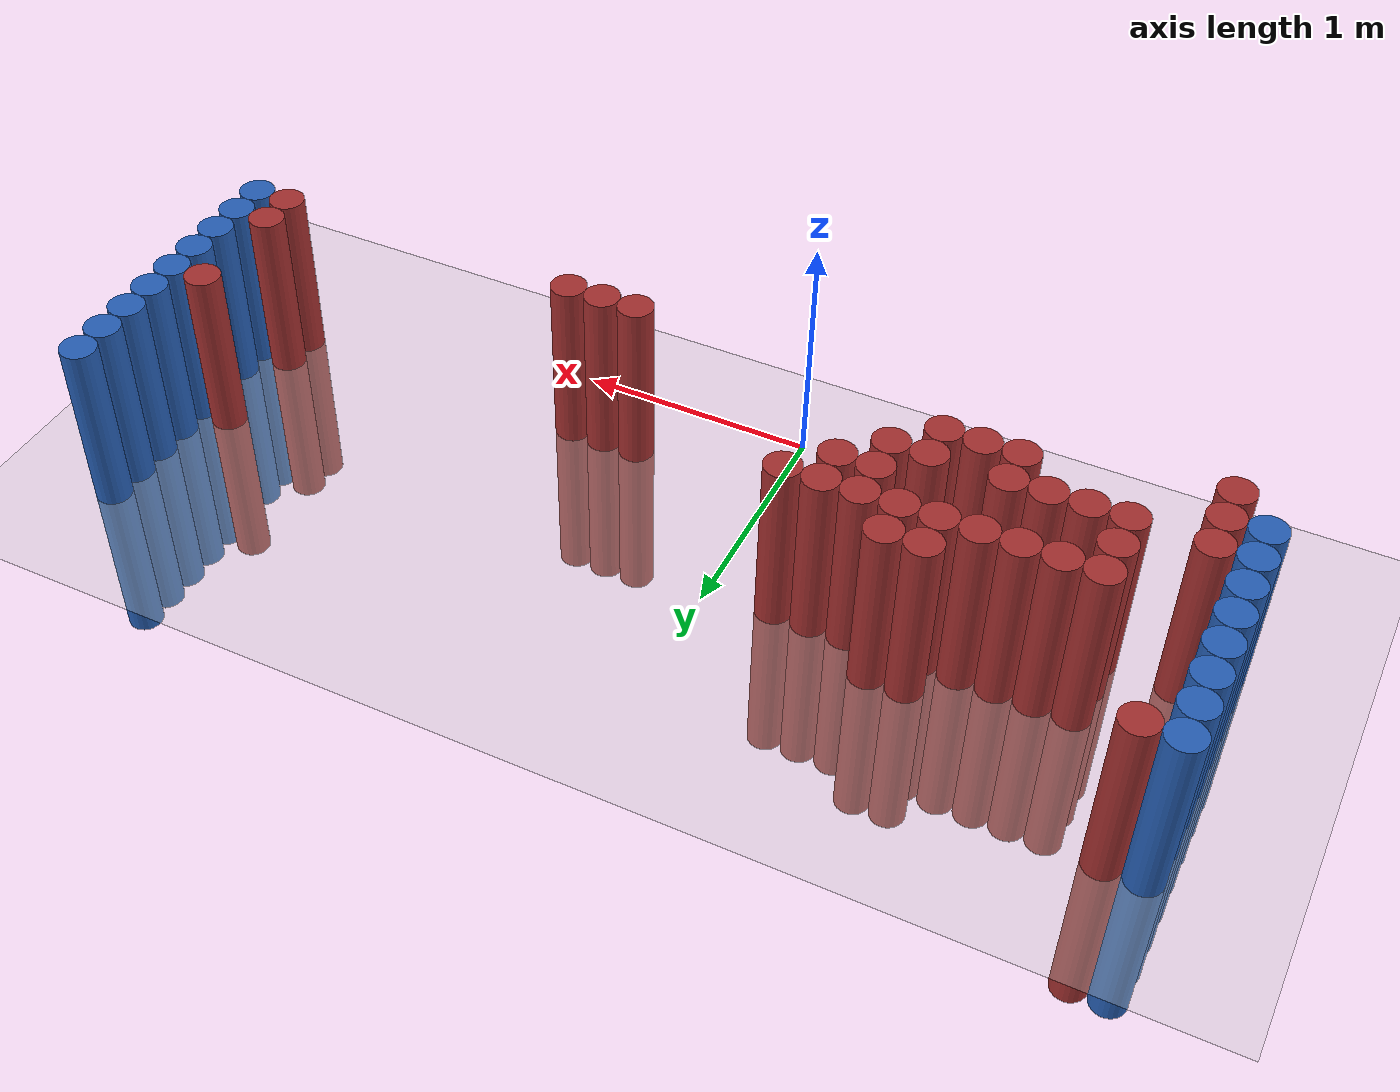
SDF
<sdf version="1.6">
 <world name="default">
  <model name="ground_plane">
   <static>1</static>
   <link name="link">
    <collision name="collision">
     <geometry><plane><normal>0 0 1</normal><size>100 100</size></plane></geometry>
     <surface><friction><ode><mu>100</mu><mu2>50</mu2></ode></friction></surface>
    </collision>
    <visual name="visual">
     <cast_shadows>0</cast_shadows>
     <geometry><plane><normal>0 0 1</normal><size>100 100</size></plane></geometry>
     <material>
      <script><uri>file://media/materials/scripts/gazebo.material</uri><name>Gazebo/Grey</name></script>
     </material>
    </visual>
   </link>
  </model>
  <model name="unit_cylinder_98">
   <static>1</static>
   <pose>-1.925000 0.475000 0.000000 0.000000 0.000000 0.000000</pose>
   <link name="link">
    <inertial>
     <mass>1</mass>
     <inertia><ixx>0.145833</ixx><ixy>0</ixy><ixz>0</ixz><iyy>0.145833</iyy><iyz>0</iyz><izz>0.125</izz></inertia>
    </inertial>
    <collision name="collision">
     <geometry><cylinder><radius>0.075000</radius><length>1.5</length></cylinder></geometry>
    </collision>
    <visual name="visual">
     <geometry><cylinder><radius>0.075000</radius><length>1.5</length></cylinder></geometry>
     <material>
      <ambient>0.152000 0.379000 0.720000 1</ambient>
      <diffuse>0.152000 0.379000 0.720000 1</diffuse>
     </material>
     <material>
      <script><name>Gazebo/Grey</name><uri>file://media/materials/scripts/gazebo.material</uri></script>
     </material>
    </visual>
   </link>
  </model>
  <model name="unit_cylinder_99">
   <static>1</static>
   <pose>-1.925000 0.625000 0.000000 0.000000 0.000000 0.000000</pose>
   <link name="link">
    <inertial>
     <mass>1</mass>
     <inertia><ixx>0.145833</ixx><ixy>0</ixy><ixz>0</ixz><iyy>0.145833</iyy><iyz>0</iyz><izz>0.125</izz></inertia>
    </inertial>
    <collision name="collision">
     <geometry><cylinder><radius>0.075000</radius><length>1.5</length></cylinder></geometry>
    </collision>
    <visual name="visual">
     <geometry><cylinder><radius>0.075000</radius><length>1.5</length></cylinder></geometry>
     <material>
      <ambient>0.152000 0.379000 0.720000 1</ambient>
      <diffuse>0.152000 0.379000 0.720000 1</diffuse>
     </material>
     <material>
      <script><name>Gazebo/Grey</name><uri>file://media/materials/scripts/gazebo.material</uri></script>
     </material>
    </visual>
   </link>
  </model>
  <model name="unit_cylinder_100">
   <static>1</static>
   <pose>-1.925000 0.775000 0.000000 0.000000 0.000000 0.000000</pose>
   <link name="link">
    <inertial>
     <mass>1</mass>
     <inertia><ixx>0.145833</ixx><ixy>0</ixy><ixz>0</ixz><iyy>0.145833</iyy><iyz>0</iyz><izz>0.125</izz></inertia>
    </inertial>
    <collision name="collision">
     <geometry><cylinder><radius>0.075000</radius><length>1.5</length></cylinder></geometry>
    </collision>
    <visual name="visual">
     <geometry><cylinder><radius>0.075000</radius><length>1.5</length></cylinder></geometry>
     <material>
      <ambient>0.152000 0.379000 0.720000 1</ambient>
      <diffuse>0.152000 0.379000 0.720000 1</diffuse>
     </material>
     <material>
      <script><name>Gazebo/Grey</name><uri>file://media/materials/scripts/gazebo.material</uri></script>
     </material>
    </visual>
   </link>
  </model>
  <model name="unit_cylinder_101">
   <static>1</static>
   <pose>-1.925000 0.925000 0.000000 0.000000 0.000000 0.000000</pose>
   <link name="link">
    <inertial>
     <mass>1</mass>
     <inertia><ixx>0.145833</ixx><ixy>0</ixy><ixz>0</ixz><iyy>0.145833</iyy><iyz>0</iyz><izz>0.125</izz></inertia>
    </inertial>
    <collision name="collision">
     <geometry><cylinder><radius>0.075000</radius><length>1.5</length></cylinder></geometry>
    </collision>
    <visual name="visual">
     <geometry><cylinder><radius>0.075000</radius><length>1.5</length></cylinder></geometry>
     <material>
      <ambient>0.152000 0.379000 0.720000 1</ambient>
      <diffuse>0.152000 0.379000 0.720000 1</diffuse>
     </material>
     <material>
      <script><name>Gazebo/Grey</name><uri>file://media/materials/scripts/gazebo.material</uri></script>
     </material>
    </visual>
   </link>
  </model>
  <model name="unit_cylinder_102">
   <static>1</static>
   <pose>-1.925000 1.075000 0.000000 0.000000 0.000000 0.000000</pose>
   <link name="link">
    <inertial>
     <mass>1</mass>
     <inertia><ixx>0.145833</ixx><ixy>0</ixy><ixz>0</ixz><iyy>0.145833</iyy><iyz>0</iyz><izz>0.125</izz></inertia>
    </inertial>
    <collision name="collision">
     <geometry><cylinder><radius>0.075000</radius><length>1.5</length></cylinder></geometry>
    </collision>
    <visual name="visual">
     <geometry><cylinder><radius>0.075000</radius><length>1.5</length></cylinder></geometry>
     <material>
      <ambient>0.152000 0.379000 0.720000 1</ambient>
      <diffuse>0.152000 0.379000 0.720000 1</diffuse>
     </material>
     <material>
      <script><name>Gazebo/Grey</name><uri>file://media/materials/scripts/gazebo.material</uri></script>
     </material>
    </visual>
   </link>
  </model>
  <model name="unit_cylinder_103">
   <static>1</static>
   <pose>-1.925000 1.225000 0.000000 0.000000 0.000000 0.000000</pose>
   <link name="link">
    <inertial>
     <mass>1</mass>
     <inertia><ixx>0.145833</ixx><ixy>0</ixy><ixz>0</ixz><iyy>0.145833</iyy><iyz>0</iyz><izz>0.125</izz></inertia>
    </inertial>
    <collision name="collision">
     <geometry><cylinder><radius>0.075000</radius><length>1.5</length></cylinder></geometry>
    </collision>
    <visual name="visual">
     <geometry><cylinder><radius>0.075000</radius><length>1.5</length></cylinder></geometry>
     <material>
      <ambient>0.152000 0.379000 0.720000 1</ambient>
      <diffuse>0.152000 0.379000 0.720000 1</diffuse>
     </material>
     <material>
      <script><name>Gazebo/Grey</name><uri>file://media/materials/scripts/gazebo.material</uri></script>
     </material>
    </visual>
   </link>
  </model>
  <model name="unit_cylinder_104">
   <static>1</static>
   <pose>-1.925000 1.375000 0.000000 0.000000 0.000000 0.000000</pose>
   <link name="link">
    <inertial>
     <mass>1</mass>
     <inertia><ixx>0.145833</ixx><ixy>0</ixy><ixz>0</ixz><iyy>0.145833</iyy><iyz>0</iyz><izz>0.125</izz></inertia>
    </inertial>
    <collision name="collision">
     <geometry><cylinder><radius>0.075000</radius><length>1.5</length></cylinder></geometry>
    </collision>
    <visual name="visual">
     <geometry><cylinder><radius>0.075000</radius><length>1.5</length></cylinder></geometry>
     <material>
      <ambient>0.152000 0.379000 0.720000 1</ambient>
      <diffuse>0.152000 0.379000 0.720000 1</diffuse>
     </material>
     <material>
      <script><name>Gazebo/Grey</name><uri>file://media/materials/scripts/gazebo.material</uri></script>
     </material>
    </visual>
   </link>
  </model>
  <model name="unit_cylinder_105">
   <static>1</static>
   <pose>-1.925000 1.525000 0.000000 0.000000 0.000000 0.000000</pose>
   <link name="link">
    <inertial>
     <mass>1</mass>
     <inertia><ixx>0.145833</ixx><ixy>0</ixy><ixz>0</ixz><iyy>0.145833</iyy><iyz>0</iyz><izz>0.125</izz></inertia>
    </inertial>
    <collision name="collision">
     <geometry><cylinder><radius>0.075000</radius><length>1.5</length></cylinder></geometry>
    </collision>
    <visual name="visual">
     <geometry><cylinder><radius>0.075000</radius><length>1.5</length></cylinder></geometry>
     <material>
      <ambient>0.152000 0.379000 0.720000 1</ambient>
      <diffuse>0.152000 0.379000 0.720000 1</diffuse>
     </material>
     <material>
      <script><name>Gazebo/Grey</name><uri>file://media/materials/scripts/gazebo.material</uri></script>
     </material>
    </visual>
   </link>
  </model>
  <model name="unit_cylinder_126">
   <static>1</static>
   <pose>-1.775000 0.325000 0.000000 0.000000 0.000000 0.000000</pose>
   <link name="link">
    <inertial>
     <mass>1</mass>
     <inertia><ixx>0.145833</ixx><ixy>0</ixy><ixz>0</ixz><iyy>0.145833</iyy><iyz>0</iyz><izz>0.125</izz></inertia>
    </inertial>
    <collision name="collision">
     <geometry><cylinder><radius>0.075000</radius><length>1.5</length></cylinder></geometry>
    </collision>
    <visual name="visual">
     <geometry><cylinder><radius>0.075000</radius><length>1.5</length></cylinder></geometry>
     <material>
      <ambient>0.648000 0.192000 0.192000 1</ambient>
      <diffuse>0.648000 0.192000 0.192000 1</diffuse>
     </material>
     <material>
      <script><name>Gazebo/Grey</name><uri>file://media/materials/scripts/gazebo.material</uri></script>
     </material>
    </visual>
   </link>
  </model>
  <model name="unit_cylinder_127">
   <static>1</static>
   <pose>-1.775000 0.475000 0.000000 0.000000 0.000000 0.000000</pose>
   <link name="link">
    <inertial>
     <mass>1</mass>
     <inertia><ixx>0.145833</ixx><ixy>0</ixy><ixz>0</ixz><iyy>0.145833</iyy><iyz>0</iyz><izz>0.125</izz></inertia>
    </inertial>
    <collision name="collision">
     <geometry><cylinder><radius>0.075000</radius><length>1.5</length></cylinder></geometry>
    </collision>
    <visual name="visual">
     <geometry><cylinder><radius>0.075000</radius><length>1.5</length></cylinder></geometry>
     <material>
      <ambient>0.648000 0.192000 0.192000 1</ambient>
      <diffuse>0.648000 0.192000 0.192000 1</diffuse>
     </material>
     <material>
      <script><name>Gazebo/Grey</name><uri>file://media/materials/scripts/gazebo.material</uri></script>
     </material>
    </visual>
   </link>
  </model>
  <model name="unit_cylinder_128">
   <static>1</static>
   <pose>-1.775000 0.625000 0.000000 0.000000 0.000000 0.000000</pose>
   <link name="link">
    <inertial>
     <mass>1</mass>
     <inertia><ixx>0.145833</ixx><ixy>0</ixy><ixz>0</ixz><iyy>0.145833</iyy><iyz>0</iyz><izz>0.125</izz></inertia>
    </inertial>
    <collision name="collision">
     <geometry><cylinder><radius>0.075000</radius><length>1.5</length></cylinder></geometry>
    </collision>
    <visual name="visual">
     <geometry><cylinder><radius>0.075000</radius><length>1.5</length></cylinder></geometry>
     <material>
      <ambient>0.648000 0.192000 0.192000 1</ambient>
      <diffuse>0.648000 0.192000 0.192000 1</diffuse>
     </material>
     <material>
      <script><name>Gazebo/Grey</name><uri>file://media/materials/scripts/gazebo.material</uri></script>
     </material>
    </visual>
   </link>
  </model>
  <model name="unit_cylinder_129">
   <static>1</static>
   <pose>-1.775000 1.525000 0.000000 0.000000 0.000000 0.000000</pose>
   <link name="link">
    <inertial>
     <mass>1</mass>
     <inertia><ixx>0.145833</ixx><ixy>0</ixy><ixz>0</ixz><iyy>0.145833</iyy><iyz>0</iyz><izz>0.125</izz></inertia>
    </inertial>
    <collision name="collision">
     <geometry><cylinder><radius>0.075000</radius><length>1.5</length></cylinder></geometry>
    </collision>
    <visual name="visual">
     <geometry><cylinder><radius>0.075000</radius><length>1.5</length></cylinder></geometry>
     <material>
      <ambient>0.648000 0.192000 0.192000 1</ambient>
      <diffuse>0.648000 0.192000 0.192000 1</diffuse>
     </material>
     <material>
      <script><name>Gazebo/Grey</name><uri>file://media/materials/scripts/gazebo.material</uri></script>
     </material>
    </visual>
   </link>
  </model>
  <model name="unit_cylinder_149">
   <static>1</static>
   <pose>-1.475000 0.625000 0.000000 0.000000 0.000000 0.000000</pose>
   <link name="link">
    <inertial>
     <mass>1</mass>
     <inertia><ixx>0.145833</ixx><ixy>0</ixy><ixz>0</ixz><iyy>0.145833</iyy><iyz>0</iyz><izz>0.125</izz></inertia>
    </inertial>
    <collision name="collision">
     <geometry><cylinder><radius>0.075000</radius><length>1.5</length></cylinder></geometry>
    </collision>
    <visual name="visual">
     <geometry><cylinder><radius>0.075000</radius><length>1.5</length></cylinder></geometry>
     <material>
      <ambient>0.648000 0.192000 0.192000 1</ambient>
      <diffuse>0.648000 0.192000 0.192000 1</diffuse>
     </material>
     <material>
      <script><name>Gazebo/Grey</name><uri>file://media/materials/scripts/gazebo.material</uri></script>
     </material>
    </visual>
   </link>
  </model>
  <model name="unit_cylinder_150">
   <static>1</static>
   <pose>-1.475000 0.775000 0.000000 0.000000 0.000000 0.000000</pose>
   <link name="link">
    <inertial>
     <mass>1</mass>
     <inertia><ixx>0.145833</ixx><ixy>0</ixy><ixz>0</ixz><iyy>0.145833</iyy><iyz>0</iyz><izz>0.125</izz></inertia>
    </inertial>
    <collision name="collision">
     <geometry><cylinder><radius>0.075000</radius><length>1.5</length></cylinder></geometry>
    </collision>
    <visual name="visual">
     <geometry><cylinder><radius>0.075000</radius><length>1.5</length></cylinder></geometry>
     <material>
      <ambient>0.648000 0.192000 0.192000 1</ambient>
      <diffuse>0.648000 0.192000 0.192000 1</diffuse>
     </material>
     <material>
      <script><name>Gazebo/Grey</name><uri>file://media/materials/scripts/gazebo.material</uri></script>
     </material>
    </visual>
   </link>
  </model>
  <model name="unit_cylinder_151">
   <static>1</static>
   <pose>-1.475000 0.925000 0.000000 0.000000 0.000000 0.000000</pose>
   <link name="link">
    <inertial>
     <mass>1</mass>
     <inertia><ixx>0.145833</ixx><ixy>0</ixy><ixz>0</ixz><iyy>0.145833</iyy><iyz>0</iyz><izz>0.125</izz></inertia>
    </inertial>
    <collision name="collision">
     <geometry><cylinder><radius>0.075000</radius><length>1.5</length></cylinder></geometry>
    </collision>
    <visual name="visual">
     <geometry><cylinder><radius>0.075000</radius><length>1.5</length></cylinder></geometry>
     <material>
      <ambient>0.648000 0.192000 0.192000 1</ambient>
      <diffuse>0.648000 0.192000 0.192000 1</diffuse>
     </material>
     <material>
      <script><name>Gazebo/Grey</name><uri>file://media/materials/scripts/gazebo.material</uri></script>
     </material>
    </visual>
   </link>
  </model>
  <model name="unit_cylinder_154">
   <static>1</static>
   <pose>-1.325000 0.625000 0.000000 0.000000 0.000000 0.000000</pose>
   <link name="link">
    <inertial>
     <mass>1</mass>
     <inertia><ixx>0.145833</ixx><ixy>0</ixy><ixz>0</ixz><iyy>0.145833</iyy><iyz>0</iyz><izz>0.125</izz></inertia>
    </inertial>
    <collision name="collision">
     <geometry><cylinder><radius>0.075000</radius><length>1.5</length></cylinder></geometry>
    </collision>
    <visual name="visual">
     <geometry><cylinder><radius>0.075000</radius><length>1.5</length></cylinder></geometry>
     <material>
      <ambient>0.648000 0.192000 0.192000 1</ambient>
      <diffuse>0.648000 0.192000 0.192000 1</diffuse>
     </material>
     <material>
      <script><name>Gazebo/Grey</name><uri>file://media/materials/scripts/gazebo.material</uri></script>
     </material>
    </visual>
   </link>
  </model>
  <model name="unit_cylinder_155">
   <static>1</static>
   <pose>-1.325000 0.925000 0.000000 0.000000 0.000000 0.000000</pose>
   <link name="link">
    <inertial>
     <mass>1</mass>
     <inertia><ixx>0.145833</ixx><ixy>0</ixy><ixz>0</ixz><iyy>0.145833</iyy><iyz>0</iyz><izz>0.125</izz></inertia>
    </inertial>
    <collision name="collision">
     <geometry><cylinder><radius>0.075000</radius><length>1.5</length></cylinder></geometry>
    </collision>
    <visual name="visual">
     <geometry><cylinder><radius>0.075000</radius><length>1.5</length></cylinder></geometry>
     <material>
      <ambient>0.648000 0.192000 0.192000 1</ambient>
      <diffuse>0.648000 0.192000 0.192000 1</diffuse>
     </material>
     <material>
      <script><name>Gazebo/Grey</name><uri>file://media/materials/scripts/gazebo.material</uri></script>
     </material>
    </visual>
   </link>
  </model>
  <model name="unit_cylinder_165">
   <static>1</static>
   <pose>-1.175000 0.625000 0.000000 0.000000 0.000000 0.000000</pose>
   <link name="link">
    <inertial>
     <mass>1</mass>
     <inertia><ixx>0.145833</ixx><ixy>0</ixy><ixz>0</ixz><iyy>0.145833</iyy><iyz>0</iyz><izz>0.125</izz></inertia>
    </inertial>
    <collision name="collision">
     <geometry><cylinder><radius>0.075000</radius><length>1.5</length></cylinder></geometry>
    </collision>
    <visual name="visual">
     <geometry><cylinder><radius>0.075000</radius><length>1.5</length></cylinder></geometry>
     <material>
      <ambient>0.648000 0.192000 0.192000 1</ambient>
      <diffuse>0.648000 0.192000 0.192000 1</diffuse>
     </material>
     <material>
      <script><name>Gazebo/Grey</name><uri>file://media/materials/scripts/gazebo.material</uri></script>
     </material>
    </visual>
   </link>
  </model>
  <model name="unit_cylinder_166">
   <static>1</static>
   <pose>-1.175000 0.925000 0.000000 0.000000 0.000000 0.000000</pose>
   <link name="link">
    <inertial>
     <mass>1</mass>
     <inertia><ixx>0.145833</ixx><ixy>0</ixy><ixz>0</ixz><iyy>0.145833</iyy><iyz>0</iyz><izz>0.125</izz></inertia>
    </inertial>
    <collision name="collision">
     <geometry><cylinder><radius>0.075000</radius><length>1.5</length></cylinder></geometry>
    </collision>
    <visual name="visual">
     <geometry><cylinder><radius>0.075000</radius><length>1.5</length></cylinder></geometry>
     <material>
      <ambient>0.648000 0.192000 0.192000 1</ambient>
      <diffuse>0.648000 0.192000 0.192000 1</diffuse>
     </material>
     <material>
      <script><name>Gazebo/Grey</name><uri>file://media/materials/scripts/gazebo.material</uri></script>
     </material>
    </visual>
   </link>
  </model>
  <model name="unit_cylinder_174">
   <static>1</static>
   <pose>-1.025000 0.475000 0.000000 0.000000 0.000000 0.000000</pose>
   <link name="link">
    <inertial>
     <mass>1</mass>
     <inertia><ixx>0.145833</ixx><ixy>0</ixy><ixz>0</ixz><iyy>0.145833</iyy><iyz>0</iyz><izz>0.125</izz></inertia>
    </inertial>
    <collision name="collision">
     <geometry><cylinder><radius>0.075000</radius><length>1.5</length></cylinder></geometry>
    </collision>
    <visual name="visual">
     <geometry><cylinder><radius>0.075000</radius><length>1.5</length></cylinder></geometry>
     <material>
      <ambient>0.648000 0.192000 0.192000 1</ambient>
      <diffuse>0.648000 0.192000 0.192000 1</diffuse>
     </material>
     <material>
      <script><name>Gazebo/Grey</name><uri>file://media/materials/scripts/gazebo.material</uri></script>
     </material>
    </visual>
   </link>
  </model>
  <model name="unit_cylinder_175">
   <static>1</static>
   <pose>-1.025000 0.625000 0.000000 0.000000 0.000000 0.000000</pose>
   <link name="link">
    <inertial>
     <mass>1</mass>
     <inertia><ixx>0.145833</ixx><ixy>0</ixy><ixz>0</ixz><iyy>0.145833</iyy><iyz>0</iyz><izz>0.125</izz></inertia>
    </inertial>
    <collision name="collision">
     <geometry><cylinder><radius>0.075000</radius><length>1.5</length></cylinder></geometry>
    </collision>
    <visual name="visual">
     <geometry><cylinder><radius>0.075000</radius><length>1.5</length></cylinder></geometry>
     <material>
      <ambient>0.648000 0.192000 0.192000 1</ambient>
      <diffuse>0.648000 0.192000 0.192000 1</diffuse>
     </material>
     <material>
      <script><name>Gazebo/Grey</name><uri>file://media/materials/scripts/gazebo.material</uri></script>
     </material>
    </visual>
   </link>
  </model>
  <model name="unit_cylinder_176">
   <static>1</static>
   <pose>-1.025000 0.925000 0.000000 0.000000 0.000000 0.000000</pose>
   <link name="link">
    <inertial>
     <mass>1</mass>
     <inertia><ixx>0.145833</ixx><ixy>0</ixy><ixz>0</ixz><iyy>0.145833</iyy><iyz>0</iyz><izz>0.125</izz></inertia>
    </inertial>
    <collision name="collision">
     <geometry><cylinder><radius>0.075000</radius><length>1.5</length></cylinder></geometry>
    </collision>
    <visual name="visual">
     <geometry><cylinder><radius>0.075000</radius><length>1.5</length></cylinder></geometry>
     <material>
      <ambient>0.648000 0.192000 0.192000 1</ambient>
      <diffuse>0.648000 0.192000 0.192000 1</diffuse>
     </material>
     <material>
      <script><name>Gazebo/Grey</name><uri>file://media/materials/scripts/gazebo.material</uri></script>
     </material>
    </visual>
   </link>
  </model>
  <model name="unit_cylinder_181">
   <static>1</static>
   <pose>-0.875000 0.475000 0.000000 0.000000 0.000000 0.000000</pose>
   <link name="link">
    <inertial>
     <mass>1</mass>
     <inertia><ixx>0.145833</ixx><ixy>0</ixy><ixz>0</ixz><iyy>0.145833</iyy><iyz>0</iyz><izz>0.125</izz></inertia>
    </inertial>
    <collision name="collision">
     <geometry><cylinder><radius>0.075000</radius><length>1.5</length></cylinder></geometry>
    </collision>
    <visual name="visual">
     <geometry><cylinder><radius>0.075000</radius><length>1.5</length></cylinder></geometry>
     <material>
      <ambient>0.648000 0.192000 0.192000 1</ambient>
      <diffuse>0.648000 0.192000 0.192000 1</diffuse>
     </material>
     <material>
      <script><name>Gazebo/Grey</name><uri>file://media/materials/scripts/gazebo.material</uri></script>
     </material>
    </visual>
   </link>
  </model>
  <model name="unit_cylinder_182">
   <static>1</static>
   <pose>-0.875000 0.925000 0.000000 0.000000 0.000000 0.000000</pose>
   <link name="link">
    <inertial>
     <mass>1</mass>
     <inertia><ixx>0.145833</ixx><ixy>0</ixy><ixz>0</ixz><iyy>0.145833</iyy><iyz>0</iyz><izz>0.125</izz></inertia>
    </inertial>
    <collision name="collision">
     <geometry><cylinder><radius>0.075000</radius><length>1.5</length></cylinder></geometry>
    </collision>
    <visual name="visual">
     <geometry><cylinder><radius>0.075000</radius><length>1.5</length></cylinder></geometry>
     <material>
      <ambient>0.648000 0.192000 0.192000 1</ambient>
      <diffuse>0.648000 0.192000 0.192000 1</diffuse>
     </material>
     <material>
      <script><name>Gazebo/Grey</name><uri>file://media/materials/scripts/gazebo.material</uri></script>
     </material>
    </visual>
   </link>
  </model>
  <model name="unit_cylinder_183">
   <static>1</static>
   <pose>-0.875000 1.075000 0.000000 0.000000 0.000000 0.000000</pose>
   <link name="link">
    <inertial>
     <mass>1</mass>
     <inertia><ixx>0.145833</ixx><ixy>0</ixy><ixz>0</ixz><iyy>0.145833</iyy><iyz>0</iyz><izz>0.125</izz></inertia>
    </inertial>
    <collision name="collision">
     <geometry><cylinder><radius>0.075000</radius><length>1.5</length></cylinder></geometry>
    </collision>
    <visual name="visual">
     <geometry><cylinder><radius>0.075000</radius><length>1.5</length></cylinder></geometry>
     <material>
      <ambient>0.648000 0.192000 0.192000 1</ambient>
      <diffuse>0.648000 0.192000 0.192000 1</diffuse>
     </material>
     <material>
      <script><name>Gazebo/Grey</name><uri>file://media/materials/scripts/gazebo.material</uri></script>
     </material>
    </visual>
   </link>
  </model>
  <model name="unit_cylinder_188">
   <static>1</static>
   <pose>-0.725000 0.475000 0.000000 0.000000 0.000000 0.000000</pose>
   <link name="link">
    <inertial>
     <mass>1</mass>
     <inertia><ixx>0.145833</ixx><ixy>0</ixy><ixz>0</ixz><iyy>0.145833</iyy><iyz>0</iyz><izz>0.125</izz></inertia>
    </inertial>
    <collision name="collision">
     <geometry><cylinder><radius>0.075000</radius><length>1.5</length></cylinder></geometry>
    </collision>
    <visual name="visual">
     <geometry><cylinder><radius>0.075000</radius><length>1.5</length></cylinder></geometry>
     <material>
      <ambient>0.648000 0.192000 0.192000 1</ambient>
      <diffuse>0.648000 0.192000 0.192000 1</diffuse>
     </material>
     <material>
      <script><name>Gazebo/Grey</name><uri>file://media/materials/scripts/gazebo.material</uri></script>
     </material>
    </visual>
   </link>
  </model>
  <model name="unit_cylinder_189">
   <static>1</static>
   <pose>-0.725000 0.625000 0.000000 0.000000 0.000000 0.000000</pose>
   <link name="link">
    <inertial>
     <mass>1</mass>
     <inertia><ixx>0.145833</ixx><ixy>0</ixy><ixz>0</ixz><iyy>0.145833</iyy><iyz>0</iyz><izz>0.125</izz></inertia>
    </inertial>
    <collision name="collision">
     <geometry><cylinder><radius>0.075000</radius><length>1.5</length></cylinder></geometry>
    </collision>
    <visual name="visual">
     <geometry><cylinder><radius>0.075000</radius><length>1.5</length></cylinder></geometry>
     <material>
      <ambient>0.648000 0.192000 0.192000 1</ambient>
      <diffuse>0.648000 0.192000 0.192000 1</diffuse>
     </material>
     <material>
      <script><name>Gazebo/Grey</name><uri>file://media/materials/scripts/gazebo.material</uri></script>
     </material>
    </visual>
   </link>
  </model>
  <model name="unit_cylinder_190">
   <static>1</static>
   <pose>-0.725000 0.925000 0.000000 0.000000 0.000000 0.000000</pose>
   <link name="link">
    <inertial>
     <mass>1</mass>
     <inertia><ixx>0.145833</ixx><ixy>0</ixy><ixz>0</ixz><iyy>0.145833</iyy><iyz>0</iyz><izz>0.125</izz></inertia>
    </inertial>
    <collision name="collision">
     <geometry><cylinder><radius>0.075000</radius><length>1.5</length></cylinder></geometry>
    </collision>
    <visual name="visual">
     <geometry><cylinder><radius>0.075000</radius><length>1.5</length></cylinder></geometry>
     <material>
      <ambient>0.648000 0.192000 0.192000 1</ambient>
      <diffuse>0.648000 0.192000 0.192000 1</diffuse>
     </material>
     <material>
      <script><name>Gazebo/Grey</name><uri>file://media/materials/scripts/gazebo.material</uri></script>
     </material>
    </visual>
   </link>
  </model>
  <model name="unit_cylinder_191">
   <static>1</static>
   <pose>-0.725000 1.075000 0.000000 0.000000 0.000000 0.000000</pose>
   <link name="link">
    <inertial>
     <mass>1</mass>
     <inertia><ixx>0.145833</ixx><ixy>0</ixy><ixz>0</ixz><iyy>0.145833</iyy><iyz>0</iyz><izz>0.125</izz></inertia>
    </inertial>
    <collision name="collision">
     <geometry><cylinder><radius>0.075000</radius><length>1.5</length></cylinder></geometry>
    </collision>
    <visual name="visual">
     <geometry><cylinder><radius>0.075000</radius><length>1.5</length></cylinder></geometry>
     <material>
      <ambient>0.648000 0.192000 0.192000 1</ambient>
      <diffuse>0.648000 0.192000 0.192000 1</diffuse>
     </material>
     <material>
      <script><name>Gazebo/Grey</name><uri>file://media/materials/scripts/gazebo.material</uri></script>
     </material>
    </visual>
   </link>
  </model>
  <model name="unit_cylinder_199">
   <static>1</static>
   <pose>-0.575000 0.625000 0.000000 0.000000 0.000000 0.000000</pose>
   <link name="link">
    <inertial>
     <mass>1</mass>
     <inertia><ixx>0.145833</ixx><ixy>0</ixy><ixz>0</ixz><iyy>0.145833</iyy><iyz>0</iyz><izz>0.125</izz></inertia>
    </inertial>
    <collision name="collision">
     <geometry><cylinder><radius>0.075000</radius><length>1.5</length></cylinder></geometry>
    </collision>
    <visual name="visual">
     <geometry><cylinder><radius>0.075000</radius><length>1.5</length></cylinder></geometry>
     <material>
      <ambient>0.648000 0.192000 0.192000 1</ambient>
      <diffuse>0.648000 0.192000 0.192000 1</diffuse>
     </material>
     <material>
      <script><name>Gazebo/Grey</name><uri>file://media/materials/scripts/gazebo.material</uri></script>
     </material>
    </visual>
   </link>
  </model>
  <model name="unit_cylinder_200">
   <static>1</static>
   <pose>-0.575000 0.775000 0.000000 0.000000 0.000000 0.000000</pose>
   <link name="link">
    <inertial>
     <mass>1</mass>
     <inertia><ixx>0.145833</ixx><ixy>0</ixy><ixz>0</ixz><iyy>0.145833</iyy><iyz>0</iyz><izz>0.125</izz></inertia>
    </inertial>
    <collision name="collision">
     <geometry><cylinder><radius>0.075000</radius><length>1.5</length></cylinder></geometry>
    </collision>
    <visual name="visual">
     <geometry><cylinder><radius>0.075000</radius><length>1.5</length></cylinder></geometry>
     <material>
      <ambient>0.648000 0.192000 0.192000 1</ambient>
      <diffuse>0.648000 0.192000 0.192000 1</diffuse>
     </material>
     <material>
      <script><name>Gazebo/Grey</name><uri>file://media/materials/scripts/gazebo.material</uri></script>
     </material>
    </visual>
   </link>
  </model>
  <model name="unit_cylinder_201">
   <static>1</static>
   <pose>-0.575000 0.925000 0.000000 0.000000 0.000000 0.000000</pose>
   <link name="link">
    <inertial>
     <mass>1</mass>
     <inertia><ixx>0.145833</ixx><ixy>0</ixy><ixz>0</ixz><iyy>0.145833</iyy><iyz>0</iyz><izz>0.125</izz></inertia>
    </inertial>
    <collision name="collision">
     <geometry><cylinder><radius>0.075000</radius><length>1.5</length></cylinder></geometry>
    </collision>
    <visual name="visual">
     <geometry><cylinder><radius>0.075000</radius><length>1.5</length></cylinder></geometry>
     <material>
      <ambient>0.648000 0.192000 0.192000 1</ambient>
      <diffuse>0.648000 0.192000 0.192000 1</diffuse>
     </material>
     <material>
      <script><name>Gazebo/Grey</name><uri>file://media/materials/scripts/gazebo.material</uri></script>
     </material>
    </visual>
   </link>
  </model>
  <model name="unit_cylinder_207">
   <static>1</static>
   <pose>-0.425000 0.775000 0.000000 0.000000 0.000000 0.000000</pose>
   <link name="link">
    <inertial>
     <mass>1</mass>
     <inertia><ixx>0.145833</ixx><ixy>0</ixy><ixz>0</ixz><iyy>0.145833</iyy><iyz>0</iyz><izz>0.125</izz></inertia>
    </inertial>
    <collision name="collision">
     <geometry><cylinder><radius>0.075000</radius><length>1.5</length></cylinder></geometry>
    </collision>
    <visual name="visual">
     <geometry><cylinder><radius>0.075000</radius><length>1.5</length></cylinder></geometry>
     <material>
      <ambient>0.648000 0.192000 0.192000 1</ambient>
      <diffuse>0.648000 0.192000 0.192000 1</diffuse>
     </material>
     <material>
      <script><name>Gazebo/Grey</name><uri>file://media/materials/scripts/gazebo.material</uri></script>
     </material>
    </visual>
   </link>
  </model>
  <model name="unit_cylinder_208">
   <static>1</static>
   <pose>-0.425000 0.925000 0.000000 0.000000 0.000000 0.000000</pose>
   <link name="link">
    <inertial>
     <mass>1</mass>
     <inertia><ixx>0.145833</ixx><ixy>0</ixy><ixz>0</ixz><iyy>0.145833</iyy><iyz>0</iyz><izz>0.125</izz></inertia>
    </inertial>
    <collision name="collision">
     <geometry><cylinder><radius>0.075000</radius><length>1.5</length></cylinder></geometry>
    </collision>
    <visual name="visual">
     <geometry><cylinder><radius>0.075000</radius><length>1.5</length></cylinder></geometry>
     <material>
      <ambient>0.648000 0.192000 0.192000 1</ambient>
      <diffuse>0.648000 0.192000 0.192000 1</diffuse>
     </material>
     <material>
      <script><name>Gazebo/Grey</name><uri>file://media/materials/scripts/gazebo.material</uri></script>
     </material>
    </visual>
   </link>
  </model>
  <model name="unit_cylinder_214">
   <static>1</static>
   <pose>-0.275000 0.925000 0.000000 0.000000 0.000000 0.000000</pose>
   <link name="link">
    <inertial>
     <mass>1</mass>
     <inertia><ixx>0.145833</ixx><ixy>0</ixy><ixz>0</ixz><iyy>0.145833</iyy><iyz>0</iyz><izz>0.125</izz></inertia>
    </inertial>
    <collision name="collision">
     <geometry><cylinder><radius>0.075000</radius><length>1.5</length></cylinder></geometry>
    </collision>
    <visual name="visual">
     <geometry><cylinder><radius>0.075000</radius><length>1.5</length></cylinder></geometry>
     <material>
      <ambient>0.648000 0.192000 0.192000 1</ambient>
      <diffuse>0.648000 0.192000 0.192000 1</diffuse>
     </material>
     <material>
      <script><name>Gazebo/Grey</name><uri>file://media/materials/scripts/gazebo.material</uri></script>
     </material>
    </visual>
   </link>
  </model>
  <model name="unit_cylinder_231">
   <static>1</static>
   <pose>0.625000 0.325000 0.000000 0.000000 0.000000 0.000000</pose>
   <link name="link">
    <inertial>
     <mass>1</mass>
     <inertia><ixx>0.145833</ixx><ixy>0</ixy><ixz>0</ixz><iyy>0.145833</iyy><iyz>0</iyz><izz>0.125</izz></inertia>
    </inertial>
    <collision name="collision">
     <geometry><cylinder><radius>0.075000</radius><length>1.5</length></cylinder></geometry>
    </collision>
    <visual name="visual">
     <geometry><cylinder><radius>0.075000</radius><length>1.5</length></cylinder></geometry>
     <material>
      <ambient>0.648000 0.192000 0.192000 1</ambient>
      <diffuse>0.648000 0.192000 0.192000 1</diffuse>
     </material>
     <material>
      <script><name>Gazebo/Grey</name><uri>file://media/materials/scripts/gazebo.material</uri></script>
     </material>
    </visual>
   </link>
  </model>
  <model name="unit_cylinder_234">
   <static>1</static>
   <pose>0.775000 0.325000 0.000000 0.000000 0.000000 0.000000</pose>
   <link name="link">
    <inertial>
     <mass>1</mass>
     <inertia><ixx>0.145833</ixx><ixy>0</ixy><ixz>0</ixz><iyy>0.145833</iyy><iyz>0</iyz><izz>0.125</izz></inertia>
    </inertial>
    <collision name="collision">
     <geometry><cylinder><radius>0.075000</radius><length>1.5</length></cylinder></geometry>
    </collision>
    <visual name="visual">
     <geometry><cylinder><radius>0.075000</radius><length>1.5</length></cylinder></geometry>
     <material>
      <ambient>0.648000 0.192000 0.192000 1</ambient>
      <diffuse>0.648000 0.192000 0.192000 1</diffuse>
     </material>
     <material>
      <script><name>Gazebo/Grey</name><uri>file://media/materials/scripts/gazebo.material</uri></script>
     </material>
    </visual>
   </link>
  </model>
  <model name="unit_cylinder_235">
   <static>1</static>
   <pose>0.925000 0.325000 0.000000 0.000000 0.000000 0.000000</pose>
   <link name="link">
    <inertial>
     <mass>1</mass>
     <inertia><ixx>0.145833</ixx><ixy>0</ixy><ixz>0</ixz><iyy>0.145833</iyy><iyz>0</iyz><izz>0.125</izz></inertia>
    </inertial>
    <collision name="collision">
     <geometry><cylinder><radius>0.075000</radius><length>1.5</length></cylinder></geometry>
    </collision>
    <visual name="visual">
     <geometry><cylinder><radius>0.075000</radius><length>1.5</length></cylinder></geometry>
     <material>
      <ambient>0.648000 0.192000 0.192000 1</ambient>
      <diffuse>0.648000 0.192000 0.192000 1</diffuse>
     </material>
     <material>
      <script><name>Gazebo/Grey</name><uri>file://media/materials/scripts/gazebo.material</uri></script>
     </material>
    </visual>
   </link>
  </model>
  <model name="unit_cylinder_251">
   <static>1</static>
   <pose>2.275000 0.325000 0.000000 0.000000 0.000000 0.000000</pose>
   <link name="link">
    <inertial>
     <mass>1</mass>
     <inertia><ixx>0.145833</ixx><ixy>0</ixy><ixz>0</ixz><iyy>0.145833</iyy><iyz>0</iyz><izz>0.125</izz></inertia>
    </inertial>
    <collision name="collision">
     <geometry><cylinder><radius>0.075000</radius><length>1.5</length></cylinder></geometry>
    </collision>
    <visual name="visual">
     <geometry><cylinder><radius>0.075000</radius><length>1.5</length></cylinder></geometry>
     <material>
      <ambient>0.648000 0.192000 0.192000 1</ambient>
      <diffuse>0.648000 0.192000 0.192000 1</diffuse>
     </material>
     <material>
      <script><name>Gazebo/Grey</name><uri>file://media/materials/scripts/gazebo.material</uri></script>
     </material>
    </visual>
   </link>
  </model>
  <model name="unit_cylinder_252">
   <static>1</static>
   <pose>2.275000 0.475000 0.000000 0.000000 0.000000 0.000000</pose>
   <link name="link">
    <inertial>
     <mass>1</mass>
     <inertia><ixx>0.145833</ixx><ixy>0</ixy><ixz>0</ixz><iyy>0.145833</iyy><iyz>0</iyz><izz>0.125</izz></inertia>
    </inertial>
    <collision name="collision">
     <geometry><cylinder><radius>0.075000</radius><length>1.5</length></cylinder></geometry>
    </collision>
    <visual name="visual">
     <geometry><cylinder><radius>0.075000</radius><length>1.5</length></cylinder></geometry>
     <material>
      <ambient>0.648000 0.192000 0.192000 1</ambient>
      <diffuse>0.648000 0.192000 0.192000 1</diffuse>
     </material>
     <material>
      <script><name>Gazebo/Grey</name><uri>file://media/materials/scripts/gazebo.material</uri></script>
     </material>
    </visual>
   </link>
  </model>
  <model name="unit_cylinder_253">
   <static>1</static>
   <pose>2.275000 0.925000 0.000000 0.000000 0.000000 0.000000</pose>
   <link name="link">
    <inertial>
     <mass>1</mass>
     <inertia><ixx>0.145833</ixx><ixy>0</ixy><ixz>0</ixz><iyy>0.145833</iyy><iyz>0</iyz><izz>0.125</izz></inertia>
    </inertial>
    <collision name="collision">
     <geometry><cylinder><radius>0.075000</radius><length>1.5</length></cylinder></geometry>
    </collision>
    <visual name="visual">
     <geometry><cylinder><radius>0.075000</radius><length>1.5</length></cylinder></geometry>
     <material>
      <ambient>0.648000 0.192000 0.192000 1</ambient>
      <diffuse>0.648000 0.192000 0.192000 1</diffuse>
     </material>
     <material>
      <script><name>Gazebo/Grey</name><uri>file://media/materials/scripts/gazebo.material</uri></script>
     </material>
    </visual>
   </link>
  </model>
  <model name="unit_cylinder_270">
   <static>1</static>
   <pose>2.425000 0.325000 0.000000 0.000000 0.000000 0.000000</pose>
   <link name="link">
    <inertial>
     <mass>1</mass>
     <inertia><ixx>0.145833</ixx><ixy>0</ixy><ixz>0</ixz><iyy>0.145833</iyy><iyz>0</iyz><izz>0.125</izz></inertia>
    </inertial>
    <collision name="collision">
     <geometry><cylinder><radius>0.075000</radius><length>1.5</length></cylinder></geometry>
    </collision>
    <visual name="visual">
     <geometry><cylinder><radius>0.075000</radius><length>1.5</length></cylinder></geometry>
     <material>
      <ambient>0.152000 0.379000 0.720000 1</ambient>
      <diffuse>0.152000 0.379000 0.720000 1</diffuse>
     </material>
     <material>
      <script><name>Gazebo/Grey</name><uri>file://media/materials/scripts/gazebo.material</uri></script>
     </material>
    </visual>
   </link>
  </model>
  <model name="unit_cylinder_271">
   <static>1</static>
   <pose>2.425000 0.475000 0.000000 0.000000 0.000000 0.000000</pose>
   <link name="link">
    <inertial>
     <mass>1</mass>
     <inertia><ixx>0.145833</ixx><ixy>0</ixy><ixz>0</ixz><iyy>0.145833</iyy><iyz>0</iyz><izz>0.125</izz></inertia>
    </inertial>
    <collision name="collision">
     <geometry><cylinder><radius>0.075000</radius><length>1.5</length></cylinder></geometry>
    </collision>
    <visual name="visual">
     <geometry><cylinder><radius>0.075000</radius><length>1.5</length></cylinder></geometry>
     <material>
      <ambient>0.152000 0.379000 0.720000 1</ambient>
      <diffuse>0.152000 0.379000 0.720000 1</diffuse>
     </material>
     <material>
      <script><name>Gazebo/Grey</name><uri>file://media/materials/scripts/gazebo.material</uri></script>
     </material>
    </visual>
   </link>
  </model>
  <model name="unit_cylinder_272">
   <static>1</static>
   <pose>2.425000 0.625000 0.000000 0.000000 0.000000 0.000000</pose>
   <link name="link">
    <inertial>
     <mass>1</mass>
     <inertia><ixx>0.145833</ixx><ixy>0</ixy><ixz>0</ixz><iyy>0.145833</iyy><iyz>0</iyz><izz>0.125</izz></inertia>
    </inertial>
    <collision name="collision">
     <geometry><cylinder><radius>0.075000</radius><length>1.5</length></cylinder></geometry>
    </collision>
    <visual name="visual">
     <geometry><cylinder><radius>0.075000</radius><length>1.5</length></cylinder></geometry>
     <material>
      <ambient>0.152000 0.379000 0.720000 1</ambient>
      <diffuse>0.152000 0.379000 0.720000 1</diffuse>
     </material>
     <material>
      <script><name>Gazebo/Grey</name><uri>file://media/materials/scripts/gazebo.material</uri></script>
     </material>
    </visual>
   </link>
  </model>
  <model name="unit_cylinder_273">
   <static>1</static>
   <pose>2.425000 0.775000 0.000000 0.000000 0.000000 0.000000</pose>
   <link name="link">
    <inertial>
     <mass>1</mass>
     <inertia><ixx>0.145833</ixx><ixy>0</ixy><ixz>0</ixz><iyy>0.145833</iyy><iyz>0</iyz><izz>0.125</izz></inertia>
    </inertial>
    <collision name="collision">
     <geometry><cylinder><radius>0.075000</radius><length>1.5</length></cylinder></geometry>
    </collision>
    <visual name="visual">
     <geometry><cylinder><radius>0.075000</radius><length>1.5</length></cylinder></geometry>
     <material>
      <ambient>0.152000 0.379000 0.720000 1</ambient>
      <diffuse>0.152000 0.379000 0.720000 1</diffuse>
     </material>
     <material>
      <script><name>Gazebo/Grey</name><uri>file://media/materials/scripts/gazebo.material</uri></script>
     </material>
    </visual>
   </link>
  </model>
  <model name="unit_cylinder_274">
   <static>1</static>
   <pose>2.425000 0.925000 0.000000 0.000000 0.000000 0.000000</pose>
   <link name="link">
    <inertial>
     <mass>1</mass>
     <inertia><ixx>0.145833</ixx><ixy>0</ixy><ixz>0</ixz><iyy>0.145833</iyy><iyz>0</iyz><izz>0.125</izz></inertia>
    </inertial>
    <collision name="collision">
     <geometry><cylinder><radius>0.075000</radius><length>1.5</length></cylinder></geometry>
    </collision>
    <visual name="visual">
     <geometry><cylinder><radius>0.075000</radius><length>1.5</length></cylinder></geometry>
     <material>
      <ambient>0.152000 0.379000 0.720000 1</ambient>
      <diffuse>0.152000 0.379000 0.720000 1</diffuse>
     </material>
     <material>
      <script><name>Gazebo/Grey</name><uri>file://media/materials/scripts/gazebo.material</uri></script>
     </material>
    </visual>
   </link>
  </model>
  <model name="unit_cylinder_275">
   <static>1</static>
   <pose>2.425000 1.075000 0.000000 0.000000 0.000000 0.000000</pose>
   <link name="link">
    <inertial>
     <mass>1</mass>
     <inertia><ixx>0.145833</ixx><ixy>0</ixy><ixz>0</ixz><iyy>0.145833</iyy><iyz>0</iyz><izz>0.125</izz></inertia>
    </inertial>
    <collision name="collision">
     <geometry><cylinder><radius>0.075000</radius><length>1.5</length></cylinder></geometry>
    </collision>
    <visual name="visual">
     <geometry><cylinder><radius>0.075000</radius><length>1.5</length></cylinder></geometry>
     <material>
      <ambient>0.152000 0.379000 0.720000 1</ambient>
      <diffuse>0.152000 0.379000 0.720000 1</diffuse>
     </material>
     <material>
      <script><name>Gazebo/Grey</name><uri>file://media/materials/scripts/gazebo.material</uri></script>
     </material>
    </visual>
   </link>
  </model>
  <model name="unit_cylinder_276">
   <static>1</static>
   <pose>2.425000 1.225000 0.000000 0.000000 0.000000 0.000000</pose>
   <link name="link">
    <inertial>
     <mass>1</mass>
     <inertia><ixx>0.145833</ixx><ixy>0</ixy><ixz>0</ixz><iyy>0.145833</iyy><iyz>0</iyz><izz>0.125</izz></inertia>
    </inertial>
    <collision name="collision">
     <geometry><cylinder><radius>0.075000</radius><length>1.5</length></cylinder></geometry>
    </collision>
    <visual name="visual">
     <geometry><cylinder><radius>0.075000</radius><length>1.5</length></cylinder></geometry>
     <material>
      <ambient>0.152000 0.379000 0.720000 1</ambient>
      <diffuse>0.152000 0.379000 0.720000 1</diffuse>
     </material>
     <material>
      <script><name>Gazebo/Grey</name><uri>file://media/materials/scripts/gazebo.material</uri></script>
     </material>
    </visual>
   </link>
  </model>
  <model name="unit_cylinder_277">
   <static>1</static>
   <pose>2.425000 1.375000 0.000000 0.000000 0.000000 0.000000</pose>
   <link name="link">
    <inertial>
     <mass>1</mass>
     <inertia><ixx>0.145833</ixx><ixy>0</ixy><ixz>0</ixz><iyy>0.145833</iyy><iyz>0</iyz><izz>0.125</izz></inertia>
    </inertial>
    <collision name="collision">
     <geometry><cylinder><radius>0.075000</radius><length>1.5</length></cylinder></geometry>
    </collision>
    <visual name="visual">
     <geometry><cylinder><radius>0.075000</radius><length>1.5</length></cylinder></geometry>
     <material>
      <ambient>0.152000 0.379000 0.720000 1</ambient>
      <diffuse>0.152000 0.379000 0.720000 1</diffuse>
     </material>
     <material>
      <script><name>Gazebo/Grey</name><uri>file://media/materials/scripts/gazebo.material</uri></script>
     </material>
    </visual>
   </link>
  </model>
  <model name="unit_cylinder_278">
   <static>1</static>
   <pose>2.425000 1.525000 0.000000 0.000000 0.000000 0.000000</pose>
   <link name="link">
    <inertial>
     <mass>1</mass>
     <inertia><ixx>0.145833</ixx><ixy>0</ixy><ixz>0</ixz><iyy>0.145833</iyy><iyz>0</iyz><izz>0.125</izz></inertia>
    </inertial>
    <collision name="collision">
     <geometry><cylinder><radius>0.075000</radius><length>1.5</length></cylinder></geometry>
    </collision>
    <visual name="visual">
     <geometry><cylinder><radius>0.075000</radius><length>1.5</length></cylinder></geometry>
     <material>
      <ambient>0.152000 0.379000 0.720000 1</ambient>
      <diffuse>0.152000 0.379000 0.720000 1</diffuse>
     </material>
     <material>
      <script><name>Gazebo/Grey</name><uri>file://media/materials/scripts/gazebo.material</uri></script>
     </material>
    </visual>
   </link>
  </model>
 </world>
</sdf>
